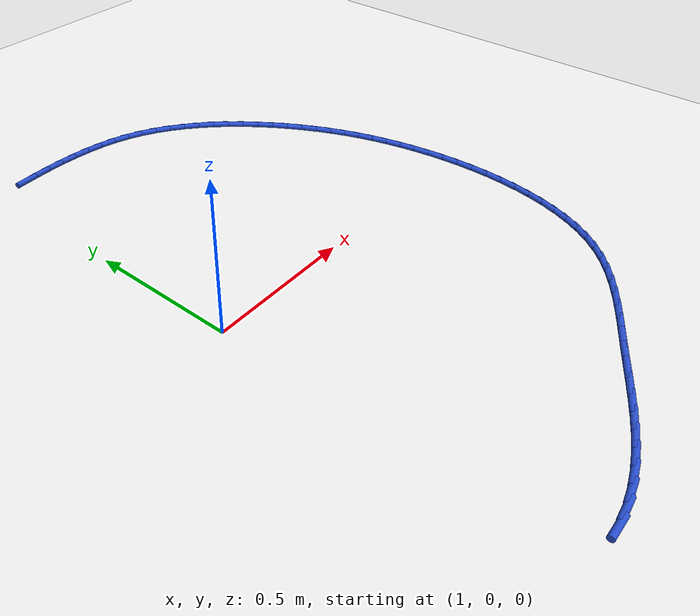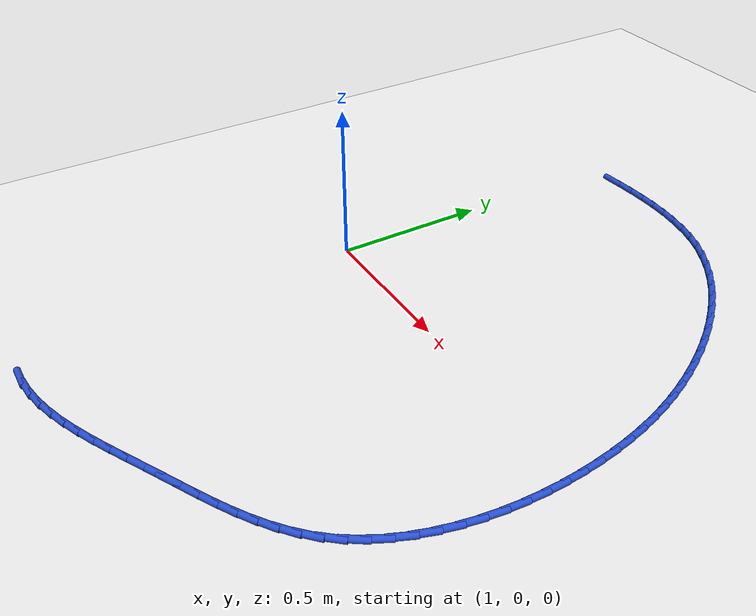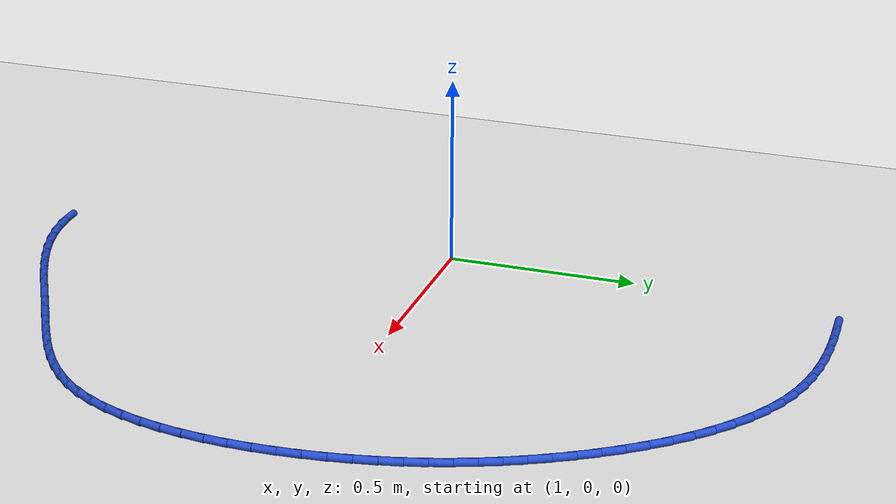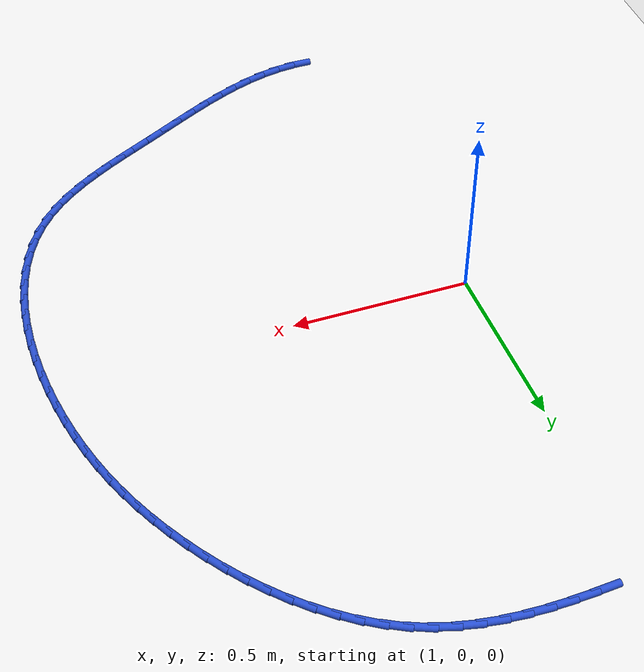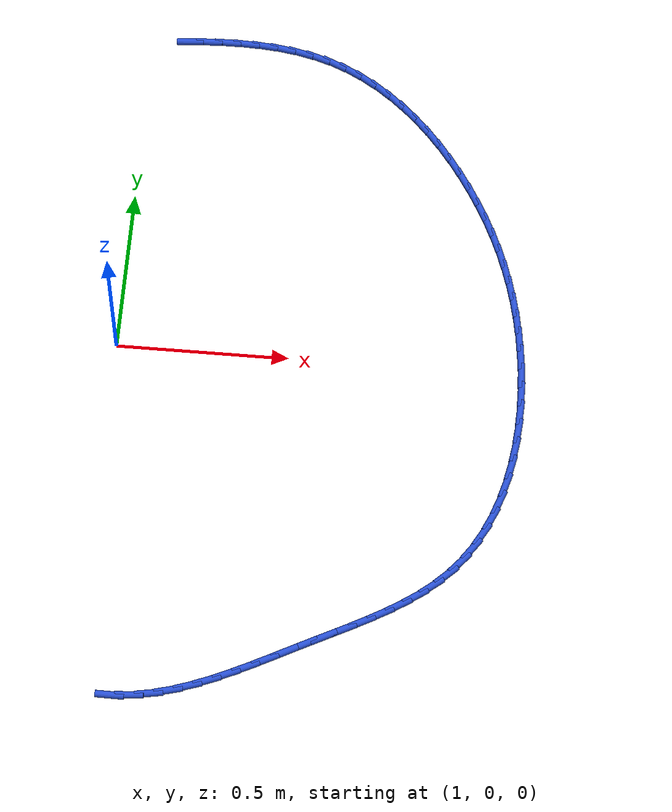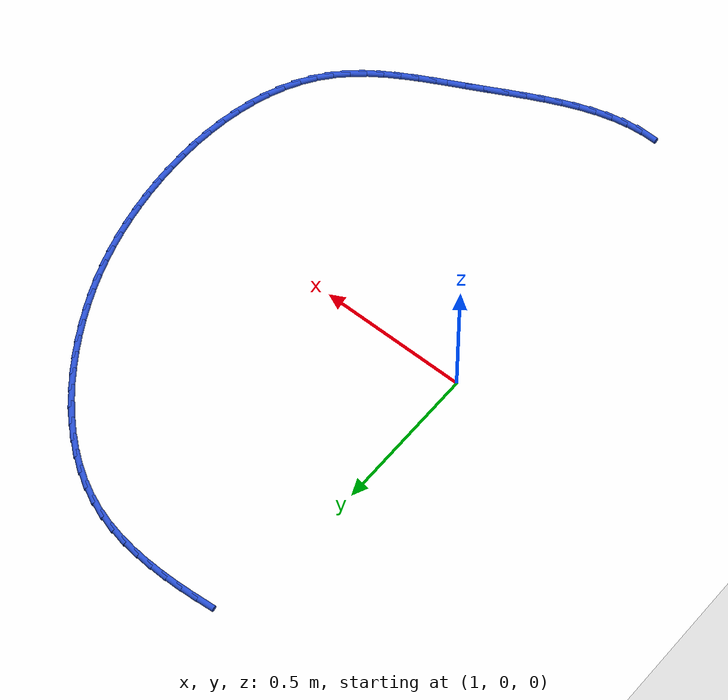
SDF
<sdf version="1.6">
 <world name="default">
  <model name="ground_plane">
   <static>1</static>
   <link name="link">
    <collision name="collision">
     <geometry><plane><normal>0 0 1</normal><size>100 100</size></plane></geometry>
     <surface><friction><ode><mu>100</mu><mu2>50</mu2></ode></friction></surface>
    </collision>
    <visual name="visual">
     <cast_shadows>0</cast_shadows>
     <geometry><plane><normal>0 0 1</normal><size>100 100</size></plane></geometry>
     <material>
      <script><uri>file://media/materials/scripts/gazebo.material</uri><name>Gazebo/WhiteGlow</name></script>
     </material>
    </visual>
   </link>
  </model>
  <model name="line">
   <link name="link_30">
    <pose>1.107195881575954 1.0511773950147245 0.01 0 1.57 0.06490759767541486</pose>
    <collision name="collision">
     <geometry><cylinder><radius>0.01</radius><length>0.08</length></cylinder></geometry>
    </collision>
    <visual name="visual">
     <material>
      <script><name>Gazebo/Blue</name><uri>file://media/materials/scripts/gazebo.material</uri></script>
     </material>
     <geometry><cylinder><radius>0.01</radius><length>0.08</length></cylinder></geometry>
    </visual>
   </link>
   <link name="link_31">
    <pose>1.164102670032325 1.0548762738585995 0.01 0 1.57 0.03579977589157312</pose>
    <collision name="collision">
     <geometry><cylinder><radius>0.01</radius><length>0.08</length></cylinder></geometry>
    </collision>
    <visual name="visual">
     <material>
      <script><name>Gazebo/Blue</name><uri>file://media/materials/scripts/gazebo.material</uri></script>
     </material>
     <geometry><cylinder><radius>0.01</radius><length>0.08</length></cylinder></geometry>
    </visual>
   </link>
   <link name="link_32">
    <pose>1.2211205549052095 1.056918373834824 0.01 0 1.57 -0.0012388554039681617</pose>
    <collision name="collision">
     <geometry><cylinder><radius>0.01</radius><length>0.08</length></cylinder></geometry>
    </collision>
    <visual name="visual">
     <material>
      <script><name>Gazebo/Blue</name><uri>file://media/materials/scripts/gazebo.material</uri></script>
     </material>
     <geometry><cylinder><radius>0.01</radius><length>0.08</length></cylinder></geometry>
    </visual>
   </link>
   <link name="link_33">
    <pose>1.2779790783247498 1.056847934309788 0.01 0 1.57 -0.04672832431453369</pose>
    <collision name="collision">
     <geometry><cylinder><radius>0.01</radius><length>0.08</length></cylinder></geometry>
    </collision>
    <visual name="visual">
     <material>
      <script><name>Gazebo/Blue</name><uri>file://media/materials/scripts/gazebo.material</uri></script>
     </material>
     <geometry><cylinder><radius>0.01</radius><length>0.08</length></cylinder></geometry>
    </visual>
   </link>
   <link name="link_34">
    <pose>1.3344077824210894 1.0542091946498828 0.01 0 1.57 -0.10126662974985262</pose>
    <collision name="collision">
     <geometry><cylinder><radius>0.01</radius><length>0.08</length></cylinder></geometry>
    </collision>
    <visual name="visual">
     <material>
      <script><name>Gazebo/Blue</name><uri>file://media/materials/scripts/gazebo.material</uri></script>
     </material>
     <geometry><cylinder><radius>0.01</radius><length>0.08</length></cylinder></geometry>
    </visual>
   </link>
   <link name="link_35">
    <pose>1.3901362093243737 1.0485463942214999 0.01 0 1.57 -0.1654390013684406</pose>
    <collision name="collision">
     <geometry><cylinder><radius>0.01</radius><length>0.08</length></cylinder></geometry>
    </collision>
    <visual name="visual">
     <material>
      <script><name>Gazebo/Blue</name><uri>file://media/materials/scripts/gazebo.material</uri></script>
     </material>
     <geometry><cylinder><radius>0.01</radius><length>0.08</length></cylinder></geometry>
    </visual>
   </link>
   <link name="link_36">
    <pose>1.4448939011647441 1.0394037723910292 0.01 0 1.57 -0.2396795087628675</pose>
    <collision name="collision">
     <geometry><cylinder><radius>0.01</radius><length>0.08</length></cylinder></geometry>
    </collision>
    <visual name="visual">
     <material>
      <script><name>Gazebo/Blue</name><uri>file://media/materials/scripts/gazebo.material</uri></script>
     </material>
     <geometry><cylinder><radius>0.01</radius><length>0.08</length></cylinder></geometry>
    </visual>
   </link>
   <link name="link_37">
    <pose>1.498410400072346 1.026325568524862 0.01 0 1.57 -0.3240766134499595</pose>
    <collision name="collision">
     <geometry><cylinder><radius>0.01</radius><length>0.08</length></cylinder></geometry>
    </collision>
    <visual name="visual">
     <material>
      <script><name>Gazebo/Blue</name><uri>file://media/materials/scripts/gazebo.material</uri></script>
     </material>
     <geometry><cylinder><radius>0.01</radius><length>0.08</length></cylinder></geometry>
    </visual>
   </link>
   <link name="link_38">
    <pose>1.550415268791001 1.008856100642375 0.01 0 1.57 -0.41487813213797065</pose>
    <collision name="collision">
     <geometry><cylinder><radius>0.01</radius><length>0.08</length></cylinder></geometry>
    </collision>
    <visual name="visual">
     <material>
      <script><name>Gazebo/Blue</name><uri>file://media/materials/scripts/gazebo.material</uri></script>
     </material>
     <geometry><cylinder><radius>0.01</radius><length>0.08</length></cylinder></geometry>
    </visual>
   </link>
   <link name="link_39">
    <pose>1.60068415126235 0.9867155129130626 0.01 0 1.57 -0.5011473398180429</pose>
    <collision name="collision">
     <geometry><cylinder><radius>0.01</radius><length>0.08</length></cylinder></geometry>
    </collision>
    <visual name="visual">
     <material>
      <script><name>Gazebo/Blue</name><uri>file://media/materials/scripts/gazebo.material</uri></script>
     </material>
     <geometry><cylinder><radius>0.01</radius><length>0.08</length></cylinder></geometry>
    </visual>
   </link>
   <link name="link_40">
    <pose>1.6491367257395257 0.960173522861143 0.01 0 1.57 -0.5806938949149196</pose>
    <collision name="collision">
     <geometry><cylinder><radius>0.01</radius><length>0.08</length></cylinder></geometry>
    </collision>
    <visual name="visual">
     <material>
      <script><name>Gazebo/Blue</name><uri>file://media/materials/scripts/gazebo.material</uri></script>
     </material>
     <geometry><cylinder><radius>0.01</radius><length>0.08</length></cylinder></geometry>
    </visual>
   </link>
   <link name="link_41">
    <pose>1.6957207347762573 0.9296069293837751 0.01 0 1.57 -0.6536965428675597</pose>
    <collision name="collision">
     <geometry><cylinder><radius>0.01</radius><length>0.08</length></cylinder></geometry>
    </collision>
    <visual name="visual">
     <material>
      <script><name>Gazebo/Blue</name><uri>file://media/materials/scripts/gazebo.material</uri></script>
     </material>
     <geometry><cylinder><radius>0.01</radius><length>0.08</length></cylinder></geometry>
    </visual>
   </link>
   <link name="link_42">
    <pose>1.740383920926269 0.8953925313781171 0.01 0 1.57 -0.7205727629413046</pose>
    <collision name="collision">
     <geometry><cylinder><radius>0.01</radius><length>0.08</length></cylinder></geometry>
    </collision>
    <visual name="visual">
     <material>
      <script><name>Gazebo/Blue</name><uri>file://media/materials/scripts/gazebo.material</uri></script>
     </material>
     <geometry><cylinder><radius>0.01</radius><length>0.08</length></cylinder></geometry>
    </visual>
   </link>
   <link name="link_43">
    <pose>1.7830740267432894 0.8579071277413283 0.01 0 1.57 -0.781879640634471</pose>
    <collision name="collision">
     <geometry><cylinder><radius>0.01</radius><length>0.08</length></cylinder></geometry>
    </collision>
    <visual name="visual">
     <material>
      <script><name>Gazebo/Blue</name><uri>file://media/materials/scripts/gazebo.material</uri></script>
     </material>
     <geometry><cylinder><radius>0.01</radius><length>0.08</length></cylinder></geometry>
    </visual>
   </link>
   <link name="link_44">
    <pose>1.8237387947810444 0.8175275173705668 0.01 0 1.57 -0.8382407219644551</pose>
    <collision name="collision">
     <geometry><cylinder><radius>0.01</radius><length>0.08</length></cylinder></geometry>
    </collision>
    <visual name="visual">
     <material>
      <script><name>Gazebo/Blue</name><uri>file://media/materials/scripts/gazebo.material</uri></script>
     </material>
     <geometry><cylinder><radius>0.01</radius><length>0.08</length></cylinder></geometry>
    </visual>
   </link>
   <link name="link_45">
    <pose>1.8623259675932617 0.7746304991629915 0.01 0 1.57 -0.8902980577783771</pose>
    <collision name="collision">
     <geometry><cylinder><radius>0.01</radius><length>0.08</length></cylinder></geometry>
    </collision>
    <visual name="visual">
     <material>
      <script><name>Gazebo/Blue</name><uri>file://media/materials/scripts/gazebo.material</uri></script>
     </material>
     <geometry><cylinder><radius>0.01</radius><length>0.08</length></cylinder></geometry>
    </visual>
   </link>
   <link name="link_46">
    <pose>1.8987832877336674 0.7295928720157615 0.01 0 1.57 -0.9386847740135696</pose>
    <collision name="collision">
     <geometry><cylinder><radius>0.01</radius><length>0.08</length></cylinder></geometry>
    </collision>
    <visual name="visual">
     <material>
      <script><name>Gazebo/Blue</name><uri>file://media/materials/scripts/gazebo.material</uri></script>
     </material>
     <geometry><cylinder><radius>0.01</radius><length>0.08</length></cylinder></geometry>
    </visual>
   </link>
   <link name="link_47">
    <pose>1.9330584977559895 0.6827914348260349 0.01 0 1.57 -0.9840128595576237</pose>
    <collision name="collision">
     <geometry><cylinder><radius>0.01</radius><length>0.08</length></cylinder></geometry>
    </collision>
    <visual name="visual">
     <material>
      <script><name>Gazebo/Blue</name><uri>file://media/materials/scripts/gazebo.material</uri></script>
     </material>
     <geometry><cylinder><radius>0.01</radius><length>0.08</length></cylinder></geometry>
    </visual>
   </link>
   <link name="link_48">
    <pose>1.9650993402139543 0.6346029864909705 0.01 0 1.57 -1.026871741361155</pose>
    <collision name="collision">
     <geometry><cylinder><radius>0.01</radius><length>0.08</length></cylinder></geometry>
    </collision>
    <visual name="visual">
     <material>
      <script><name>Gazebo/Blue</name><uri>file://media/materials/scripts/gazebo.material</uri></script>
     </material>
     <geometry><cylinder><radius>0.01</radius><length>0.08</length></cylinder></geometry>
    </visual>
   </link>
   <link name="link_49">
    <pose>1.9948535576612882 0.5854043259077273 0.01 0 1.57 -1.067844758970454</pose>
    <collision name="collision">
     <geometry><cylinder><radius>0.01</radius><length>0.08</length></cylinder></geometry>
    </collision>
    <visual name="visual">
     <material>
      <script><name>Gazebo/Blue</name><uri>file://media/materials/scripts/gazebo.material</uri></script>
     </material>
     <geometry><cylinder><radius>0.01</radius><length>0.08</length></cylinder></geometry>
    </visual>
   </link>
   <link name="link_50">
    <pose>2.022269216437616 0.5355704621589216 0.01 0 1.57 -1.1083534559188353</pose>
    <collision name="collision">
     <geometry><cylinder><radius>0.01</radius><length>0.08</length></cylinder></geometry>
    </collision>
    <visual name="visual">
     <material>
      <script><name>Gazebo/Blue</name><uri>file://media/materials/scripts/gazebo.material</uri></script>
     </material>
     <geometry><cylinder><radius>0.01</radius><length>0.08</length></cylinder></geometry>
    </visual>
   </link>
   <link name="link_51">
    <pose>2.047324874423708 0.4853078540466426 0.01 0 1.57 -1.1500051198145556</pose>
    <collision name="collision">
     <geometry><cylinder><radius>0.01</radius><length>0.08</length></cylinder></geometry>
    </collision>
    <visual name="visual">
     <material>
      <script><name>Gazebo/Blue</name><uri>file://media/materials/scripts/gazebo.material</uri></script>
     </material>
     <geometry><cylinder><radius>0.01</radius><length>0.08</length></cylinder></geometry>
    </visual>
   </link>
   <link name="link_52">
    <pose>2.070054131410957 0.4345187012530039 0.01 0 1.57 -1.1925699731234496</pose>
    <collision name="collision">
     <geometry><cylinder><radius>0.01</radius><length>0.08</length></cylinder></geometry>
    </collision>
    <visual name="visual">
     <material>
      <script><name>Gazebo/Blue</name><uri>file://media/materials/scripts/gazebo.material</uri></script>
     </material>
     <geometry><cylinder><radius>0.01</radius><length>0.08</length></cylinder></geometry>
    </visual>
   </link>
   <link name="link_53">
    <pose>2.090496364709659 0.3830732666542033 0.01 0 1.57 -1.2355962924263892</pose>
    <collision name="collision">
     <geometry><cylinder><radius>0.01</radius><length>0.08</length></cylinder></geometry>
    </collision>
    <visual name="visual">
     <material>
      <script><name>Gazebo/Blue</name><uri>file://media/materials/scripts/gazebo.material</uri></script>
     </material>
     <geometry><cylinder><radius>0.01</radius><length>0.08</length></cylinder></geometry>
    </visual>
   </link>
   <link name="link_54">
    <pose>2.108690951630108 0.3308418131264372 0.01 0 1.57 -1.2786120088103063</pose>
    <collision name="collision">
     <geometry><cylinder><radius>0.01</radius><length>0.08</length></cylinder></geometry>
    </collision>
    <visual name="visual">
     <material>
      <script><name>Gazebo/Blue</name><uri>file://media/materials/scripts/gazebo.material</uri></script>
     </material>
     <geometry><cylinder><radius>0.01</radius><length>0.08</length></cylinder></geometry>
    </visual>
   </link>
   <link name="link_55">
    <pose>2.124677269482599 0.2776946035459032 0.01 0 1.57 -1.3211470273680457</pose>
    <collision name="collision">
     <geometry><cylinder><radius>0.01</radius><length>0.08</length></cylinder></geometry>
    </collision>
    <visual name="visual">
     <material>
      <script><name>Gazebo/Blue</name><uri>file://media/materials/scripts/gazebo.material</uri></script>
     </material>
     <geometry><cylinder><radius>0.01</radius><length>0.08</length></cylinder></geometry>
    </visual>
   </link>
   <link name="link_56">
    <pose>2.1384946955774278 0.2235019007887981 0.01 0 1.57 -1.3627553056685873</pose>
    <collision name="collision">
     <geometry><cylinder><radius>0.01</radius><length>0.08</length></cylinder></geometry>
    </collision>
    <visual name="visual">
     <material>
      <script><name>Gazebo/Blue</name><uri>file://media/materials/scripts/gazebo.material</uri></script>
     </material>
     <geometry><cylinder><radius>0.01</radius><length>0.08</length></cylinder></geometry>
    </visual>
   </link>
   <link name="link_57">
    <pose>2.1501826072248886 0.16813396773131936 0.01 0 1.57 -1.4030391093998502</pose>
    <collision name="collision">
     <geometry><cylinder><radius>0.01</radius><length>0.08</length></cylinder></geometry>
    </collision>
    <visual name="visual">
     <material>
      <script><name>Gazebo/Blue</name><uri>file://media/materials/scripts/gazebo.material</uri></script>
     </material>
     <geometry><cylinder><radius>0.01</radius><length>0.08</length></cylinder></geometry>
    </visual>
   </link>
   <link name="link_58">
    <pose>2.159779889131376 0.11146229519595224 0.01 0 1.57 -1.4423838669794231</pose>
    <collision name="collision">
     <geometry><cylinder><radius>0.01</radius><length>0.08</length></cylinder></geometry>
    </collision>
    <visual name="visual">
     <material>
      <script><name>Gazebo/Blue</name><uri>file://media/materials/scripts/gazebo.material</uri></script>
     </material>
     <geometry><cylinder><radius>0.01</radius><length>0.08</length></cylinder></geometry>
    </visual>
   </link>
   <link name="link_59">
    <pose>2.1672620372540723 0.05351638732810586 0.01 0 1.57 -1.4824157623836882</pose>
    <collision name="collision">
     <geometry><cylinder><radius>0.01</radius><length>0.08</length></cylinder></geometry>
    </collision>
    <visual name="visual">
     <material>
      <script><name>Gazebo/Blue</name><uri>file://media/materials/scripts/gazebo.material</uri></script>
     </material>
     <geometry><cylinder><radius>0.01</radius><length>0.08</length></cylinder></geometry>
    </visual>
   </link>
   <link name="link_60">
    <pose>2.1724793477459072 -0.005362157903454891 0.01 0 1.57 -1.5239192322594803</pose>
    <collision name="collision">
     <geometry><cylinder><radius>0.01</radius><length>0.08</length></cylinder></geometry>
    </collision>
    <visual name="visual">
     <material>
      <script><name>Gazebo/Blue</name><uri>file://media/materials/scripts/gazebo.material</uri></script>
     </material>
     <geometry><cylinder><radius>0.01</radius><length>0.08</length></cylinder></geometry>
    </visual>
   </link>
   <link name="link_61">
    <pose>2.175267436141558 -0.06479514718297373 0.01 0 1.57 -1.5675337261637519</pose>
    <collision name="collision">
     <geometry><cylinder><radius>0.01</radius><length>0.08</length></cylinder></geometry>
    </collision>
    <visual name="visual">
     <material>
      <script><name>Gazebo/Blue</name><uri>file://media/materials/scripts/gazebo.material</uri></script>
     </material>
     <geometry><cylinder><radius>0.01</radius><length>0.08</length></cylinder></geometry>
    </visual>
   </link>
   <link name="link_62">
    <pose>2.1754619179757007 -0.12440438719469568 0.01 0 1.57 1.527671661042671</pose>
    <collision name="collision">
     <geometry><cylinder><radius>0.01</radius><length>0.08</length></cylinder></geometry>
    </collision>
    <visual name="visual">
     <material>
      <script><name>Gazebo/Blue</name><uri>file://media/materials/scripts/gazebo.material</uri></script>
     </material>
     <geometry><cylinder><radius>0.01</radius><length>0.08</length></cylinder></geometry>
    </visual>
   </link>
   <link name="link_63">
    <pose>2.172898408783015 -0.18381168462286615 0.01 0 1.57 1.4778109677307847</pose>
    <collision name="collision">
     <geometry><cylinder><radius>0.01</radius><length>0.08</length></cylinder></geometry>
    </collision>
    <visual name="visual">
     <material>
      <script><name>Gazebo/Blue</name><uri>file://media/materials/scripts/gazebo.material</uri></script>
     </material>
     <geometry><cylinder><radius>0.01</radius><length>0.08</length></cylinder></geometry>
    </visual>
   </link>
   <link name="link_64">
    <pose>2.1674125240981756 -0.24263884615172804 0.01 0 1.57 1.423726691569965</pose>
    <collision name="collision">
     <geometry><cylinder><radius>0.01</radius><length>0.08</length></cylinder></geometry>
    </collision>
    <visual name="visual">
     <material>
      <script><name>Gazebo/Blue</name><uri>file://media/materials/scripts/gazebo.material</uri></script>
     </material>
     <geometry><cylinder><radius>0.01</radius><length>0.08</length></cylinder></geometry>
    </visual>
   </link>
   <link name="link_65">
    <pose>2.1588398794558628 -0.30050767846552684 0.01 0 1.57 1.3646174127629302</pose>
    <collision name="collision">
     <geometry><cylinder><radius>0.01</radius><length>0.08</length></cylinder></geometry>
    </collision>
    <visual name="visual">
     <material>
      <script><name>Gazebo/Blue</name><uri>file://media/materials/scripts/gazebo.material</uri></script>
     </material>
     <geometry><cylinder><radius>0.01</radius><length>0.08</length></cylinder></geometry>
    </visual>
   </link>
   <link name="link_66">
    <pose>2.147016090390751 -0.3570399882485078 0.01 0 1.57 1.299642730076492</pose>
    <collision name="collision">
     <geometry><cylinder><radius>0.01</radius><length>0.08</length></cylinder></geometry>
    </collision>
    <visual name="visual">
     <material>
      <script><name>Gazebo/Blue</name><uri>file://media/materials/scripts/gazebo.material</uri></script>
     </material>
     <geometry><cylinder><radius>0.01</radius><length>0.08</length></cylinder></geometry>
    </visual>
   </link>
   <link name="link_67">
    <pose>2.1317767724375196 -0.411857582184914 0.01 0 1.57 1.227957651744999</pose>
    <collision name="collision">
     <geometry><cylinder><radius>0.01</radius><length>0.08</length></cylinder></geometry>
    </collision>
    <visual name="visual">
     <material>
      <script><name>Gazebo/Blue</name><uri>file://media/materials/scripts/gazebo.material</uri></script>
     </material>
     <geometry><cylinder><radius>0.01</radius><length>0.08</length></cylinder></geometry>
    </visual>
   </link>
   <link name="link_68">
    <pose>2.1129575411308457 -0.46458226695899096 0.01 0 1.57 1.1487797664183304</pose>
    <collision name="collision">
     <geometry><cylinder><radius>0.01</radius><length>0.08</length></cylinder></geometry>
    </collision>
    <visual name="visual">
     <material>
      <script><name>Gazebo/Blue</name><uri>file://media/materials/scripts/gazebo.material</uri></script>
     </material>
     <geometry><cylinder><radius>0.01</radius><length>0.08</length></cylinder></geometry>
    </visual>
   </link>
   <link name="link_69">
    <pose>2.0903940120054063 -0.514835849254983 0.01 0 1.57 1.0615002034432848</pose>
    <collision name="collision">
     <geometry><cylinder><radius>0.01</radius><length>0.08</length></cylinder></geometry>
    </collision>
    <visual name="visual">
     <material>
      <script><name>Gazebo/Blue</name><uri>file://media/materials/scripts/gazebo.material</uri></script>
     </material>
     <geometry><cylinder><radius>0.01</radius><length>0.08</length></cylinder></geometry>
    </visual>
   </link>
   <link name="link_70">
    <pose>2.0639218005958777 -0.5622401357571356 0.01 0 1.57 0.9658434636309625</pose>
    <collision name="collision">
     <geometry><cylinder><radius>0.01</radius><length>0.08</length></cylinder></geometry>
    </collision>
    <visual name="visual">
     <material>
      <script><name>Gazebo/Blue</name><uri>file://media/materials/scripts/gazebo.material</uri></script>
     </material>
     <geometry><cylinder><radius>0.01</radius><length>0.08</length></cylinder></geometry>
    </visual>
   </link>
   <link name="link_71">
    <pose>2.0333765224369382 -0.6064169331496916 0.01 0 1.57 0.8624340696595768</pose>
    <collision name="collision">
     <geometry><cylinder><radius>0.01</radius><length>0.08</length></cylinder></geometry>
    </collision>
    <visual name="visual">
     <material>
      <script><name>Gazebo/Blue</name><uri>file://media/materials/scripts/gazebo.material</uri></script>
     </material>
     <geometry><cylinder><radius>0.01</radius><length>0.08</length></cylinder></geometry>
    </visual>
   </link>
   <link name="link_72">
    <pose>1.9986063618104972 -0.6470038018568715 0.01 0 1.57 0.7621656434959511</pose>
    <collision name="collision">
     <geometry><cylinder><radius>0.01</radius><length>0.08</length></cylinder></geometry>
    </collision>
    <visual name="visual">
     <material>
      <script><name>Gazebo/Blue</name><uri>file://media/materials/scripts/gazebo.material</uri></script>
     </material>
     <geometry><cylinder><radius>0.01</radius><length>0.08</length></cylinder></geometry>
    </visual>
   </link>
   <link name="link_73">
    <pose>1.9597921067151831 -0.6840551897119019 0.01 0 1.57 0.6771132184942178</pose>
    <collision name="collision">
     <geometry><cylinder><radius>0.01</radius><length>0.08</length></cylinder></geometry>
    </collision>
    <visual name="visual">
     <material>
      <script><name>Gazebo/Blue</name><uri>file://media/materials/scripts/gazebo.material</uri></script>
     </material>
     <geometry><cylinder><radius>0.01</radius><length>0.08</length></cylinder></geometry>
    </visual>
   </link>
   <link name="link_74">
    <pose>1.9174732908764354 -0.7180751985026237 0.01 0 1.57 0.6081835100943606</pose>
    <collision name="collision">
     <geometry><cylinder><radius>0.01</radius><length>0.08</length></cylinder></geometry>
    </collision>
    <visual name="visual">
     <material>
      <script><name>Gazebo/Blue</name><uri>file://media/materials/scripts/gazebo.material</uri></script>
     </material>
     <geometry><cylinder><radius>0.01</radius><length>0.08</length></cylinder></geometry>
    </visual>
   </link>
   <link name="link_75">
    <pose>1.8722072545536141 -0.7495902488287713 0.01 0 1.57 0.5548417782609941</pose>
    <collision name="collision">
     <geometry><cylinder><radius>0.01</radius><length>0.08</length></cylinder></geometry>
    </collision>
    <visual name="visual">
     <material>
      <script><name>Gazebo/Blue</name><uri>file://media/materials/scripts/gazebo.material</uri></script>
     </material>
     <geometry><cylinder><radius>0.01</radius><length>0.08</length></cylinder></geometry>
    </visual>
   </link>
   <link name="link_76">
    <pose>1.824551338006079 -0.7791267612900824 0.01 0 1.57 0.5161749196239209</pose>
    <collision name="collision">
     <geometry><cylinder><radius>0.01</radius><length>0.08</length></cylinder></geometry>
    </collision>
    <visual name="visual">
     <material>
      <script><name>Gazebo/Blue</name><uri>file://media/materials/scripts/gazebo.material</uri></script>
     </material>
     <geometry><cylinder><radius>0.01</radius><length>0.08</length></cylinder></geometry>
    </visual>
   </link>
   <link name="link_77">
    <pose>1.7750628814931897 -0.8072111564862935 0.01 0 1.57 0.49125618776757507</pose>
    <collision name="collision">
     <geometry><cylinder><radius>0.01</radius><length>0.08</length></cylinder></geometry>
    </collision>
    <visual name="visual">
     <material>
      <script><name>Gazebo/Blue</name><uri>file://media/materials/scripts/gazebo.material</uri></script>
     </material>
     <geometry><cylinder><radius>0.01</radius><length>0.08</length></cylinder></geometry>
    </visual>
   </link>
   <link name="link_78">
    <pose>1.7242992252743061 -0.8343698550171412 0.01 0 1.57 0.4793516118424321</pose>
    <collision name="collision">
     <geometry><cylinder><radius>0.01</radius><length>0.08</length></cylinder></geometry>
    </collision>
    <visual name="visual">
     <material>
      <script><name>Gazebo/Blue</name><uri>file://media/materials/scripts/gazebo.material</uri></script>
     </material>
     <geometry><cylinder><radius>0.01</radius><length>0.08</length></cylinder></geometry>
    </visual>
   </link>
   <link name="link_79">
    <pose>1.672817709608789 -0.8611292774823617 0.01 0 1.57 0.4799993344697294</pose>
    <collision name="collision">
     <geometry><cylinder><radius>0.01</radius><length>0.08</length></cylinder></geometry>
    </collision>
    <visual name="visual">
     <material>
      <script><name>Gazebo/Blue</name><uri>file://media/materials/scripts/gazebo.material</uri></script>
     </material>
     <geometry><cylinder><radius>0.01</radius><length>0.08</length></cylinder></geometry>
    </visual>
   </link>
   <link name="link_80">
    <pose>1.6211751352449781 -0.8880149180330207 0.01 0 1.57 0.48715154529652016</pose>
    <collision name="collision">
     <geometry><cylinder><radius>0.01</radius><length>0.08</length></cylinder></geometry>
    </collision>
    <visual name="visual">
     <material>
      <script><name>Gazebo/Blue</name><uri>file://media/materials/scripts/gazebo.material</uri></script>
     </material>
     <geometry><cylinder><radius>0.01</radius><length>0.08</length></cylinder></geometry>
    </visual>
   </link>
   <link name="link_81">
    <pose>1.5697546796446415 -0.9152541248004321 0.01 0 1.57 0.486455764215769</pose>
    <collision name="collision">
     <geometry><cylinder><radius>0.01</radius><length>0.08</length></cylinder></geometry>
    </collision>
    <visual name="visual">
     <material>
      <script><name>Gazebo/Blue</name><uri>file://media/materials/scripts/gazebo.material</uri></script>
     </material>
     <geometry><cylinder><radius>0.01</radius><length>0.08</length></cylinder></geometry>
    </visual>
   </link>
   <link name="link_82">
    <pose>1.5185179694463242 -0.9423503585702128 0.01 0 1.57 0.4756470352216753</pose>
    <collision name="collision">
     <geometry><cylinder><radius>0.01</radius><length>0.08</length></cylinder></geometry>
    </collision>
    <visual name="visual">
     <material>
      <script><name>Gazebo/Blue</name><uri>file://media/materials/scripts/gazebo.material</uri></script>
     </material>
     <geometry><cylinder><radius>0.01</radius><length>0.08</length></cylinder></geometry>
    </visual>
   </link>
   <link name="link_83">
    <pose>1.467363890240082 -0.968699341159026 0.01 0 1.57 0.45439993537753476</pose>
    <collision name="collision">
     <geometry><cylinder><radius>0.01</radius><length>0.08</length></cylinder></geometry>
    </collision>
    <visual name="visual">
     <material>
      <script><name>Gazebo/Blue</name><uri>file://media/materials/scripts/gazebo.material</uri></script>
     </material>
     <geometry><cylinder><radius>0.01</radius><length>0.08</length></cylinder></geometry>
    </visual>
   </link>
   <link name="link_84">
    <pose>1.41619132761597 -0.993696794383534 0.01 0 1.57 0.42220803026840803</pose>
    <collision name="collision">
     <geometry><cylinder><radius>0.01</radius><length>0.08</length></cylinder></geometry>
    </collision>
    <visual name="visual">
     <material>
      <script><name>Gazebo/Blue</name><uri>file://media/materials/scripts/gazebo.material</uri></script>
     </material>
     <geometry><cylinder><radius>0.01</radius><length>0.08</length></cylinder></geometry>
    </visual>
   </link>
   <link name="link_85">
    <pose>1.3648991671640436 -1.0167384400603992 0.01 0 1.57 0.37843640097335607</pose>
    <collision name="collision">
     <geometry><cylinder><radius>0.01</radius><length>0.08</length></cylinder></geometry>
    </collision>
    <visual name="visual">
     <material>
      <script><name>Gazebo/Blue</name><uri>file://media/materials/scripts/gazebo.material</uri></script>
     </material>
     <geometry><cylinder><radius>0.01</radius><length>0.08</length></cylinder></geometry>
    </visual>
   </link>
   <link name="link_86">
    <pose>1.3133862944743602 -1.0372200000062837 0.01 0 1.57 0.32242691051429784</pose>
    <collision name="collision">
     <geometry><cylinder><radius>0.01</radius><length>0.08</length></cylinder></geometry>
    </collision>
    <visual name="visual">
     <material>
      <script><name>Gazebo/Blue</name><uri>file://media/materials/scripts/gazebo.material</uri></script>
     </material>
     <geometry><cylinder><radius>0.01</radius><length>0.08</length></cylinder></geometry>
    </visual>
   </link>
   <link name="link_87">
    <pose>1.261551595136974 -1.0545371960378496 0.01 0 1.57 0.25367905926082357</pose>
    <collision name="collision">
     <geometry><cylinder><radius>0.01</radius><length>0.08</length></cylinder></geometry>
    </collision>
    <visual name="visual">
     <material>
      <script><name>Gazebo/Blue</name><uri>file://media/materials/scripts/gazebo.material</uri></script>
     </material>
     <geometry><cylinder><radius>0.01</radius><length>0.08</length></cylinder></geometry>
    </visual>
   </link>
   <link name="link_88">
    <pose>1.209293954741942 -1.0680857499717602 0.01 0 1.57 0.17212108499506212</pose>
    <collision name="collision">
     <geometry><cylinder><radius>0.01</radius><length>0.08</length></cylinder></geometry>
    </collision>
    <visual name="visual">
     <material>
      <script><name>Gazebo/Blue</name><uri>file://media/materials/scripts/gazebo.material</uri></script>
     </material>
     <geometry><cylinder><radius>0.01</radius><length>0.08</length></cylinder></geometry>
    </visual>
   </link>
   <link name="link_89">
    <pose>1.1565122588793177 -1.077261383624677 0.01 0 1.57 0.07987533049049432</pose>
    <collision name="collision">
     <geometry><cylinder><radius>0.01</radius><length>0.08</length></cylinder></geometry>
    </collision>
    <visual name="visual">
     <material>
      <script><name>Gazebo/Blue</name><uri>file://media/materials/scripts/gazebo.material</uri></script>
     </material>
     <geometry><cylinder><radius>0.01</radius><length>0.08</length></cylinder></geometry>
    </visual>
   </link>
   <link name="link_90">
    <pose>1.1031274223137881 -1.0815346067749658 0.01 0 1.57 -0.010736830115166532</pose>
    <collision name="collision">
     <geometry><cylinder><radius>0.01</radius><length>0.08</length></cylinder></geometry>
    </collision>
    <visual name="visual">
     <material>
      <script><name>Gazebo/Blue</name><uri>file://media/materials/scripts/gazebo.material</uri></script>
     </material>
     <geometry><cylinder><radius>0.01</radius><length>0.08</length></cylinder></geometry>
    </visual>
   </link>
  </model>
 </world>
</sdf>
